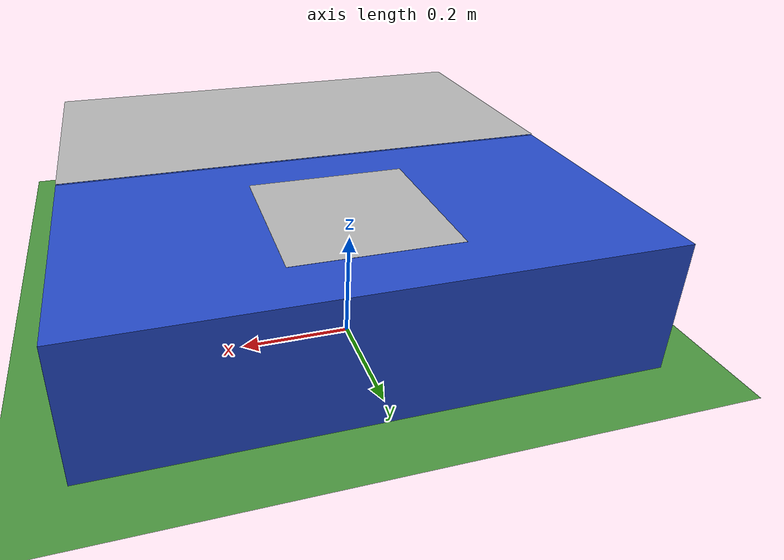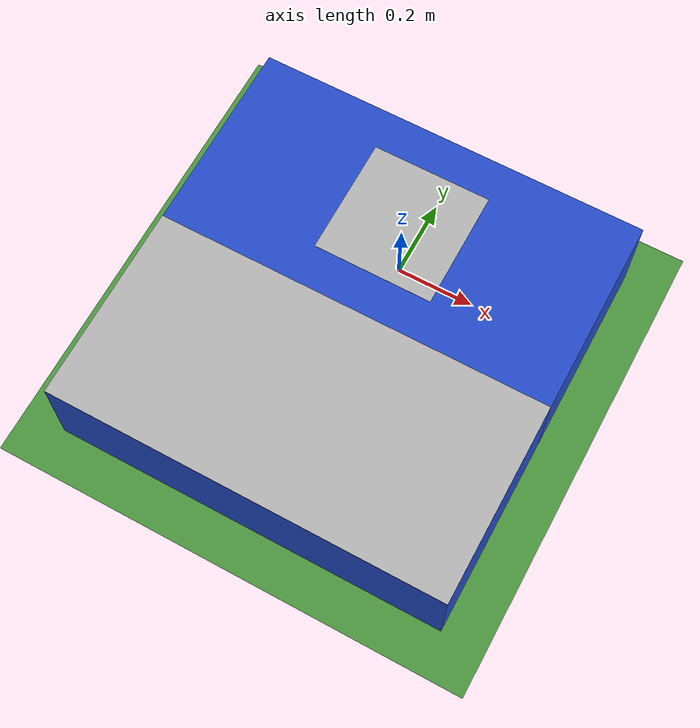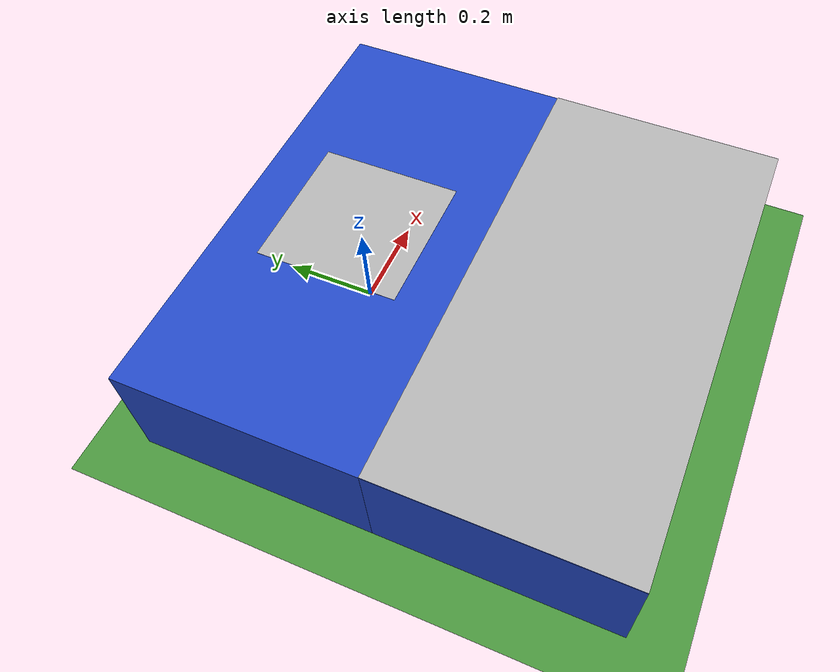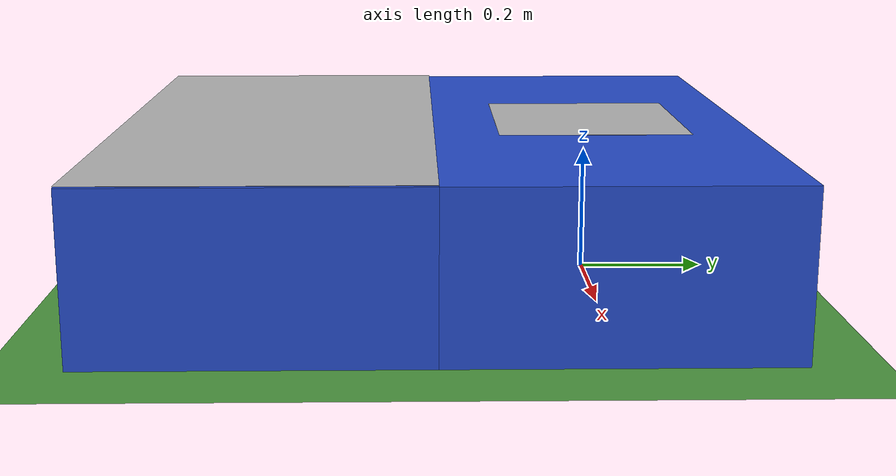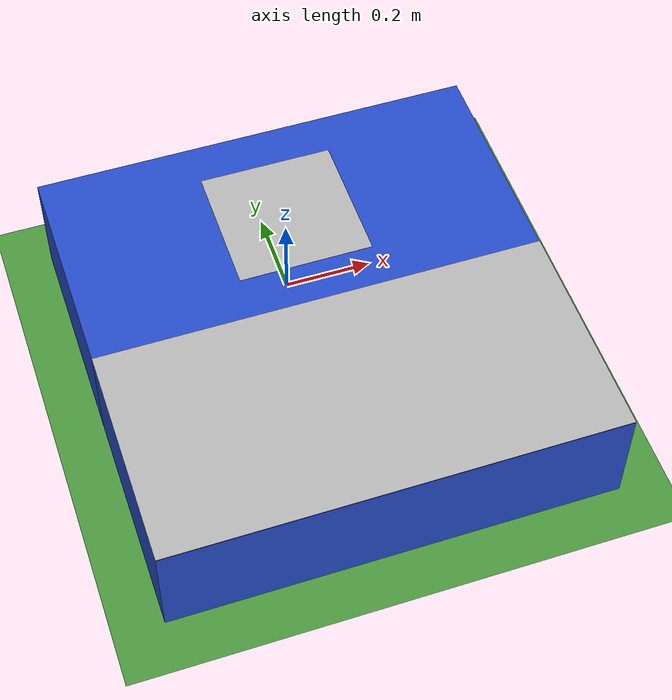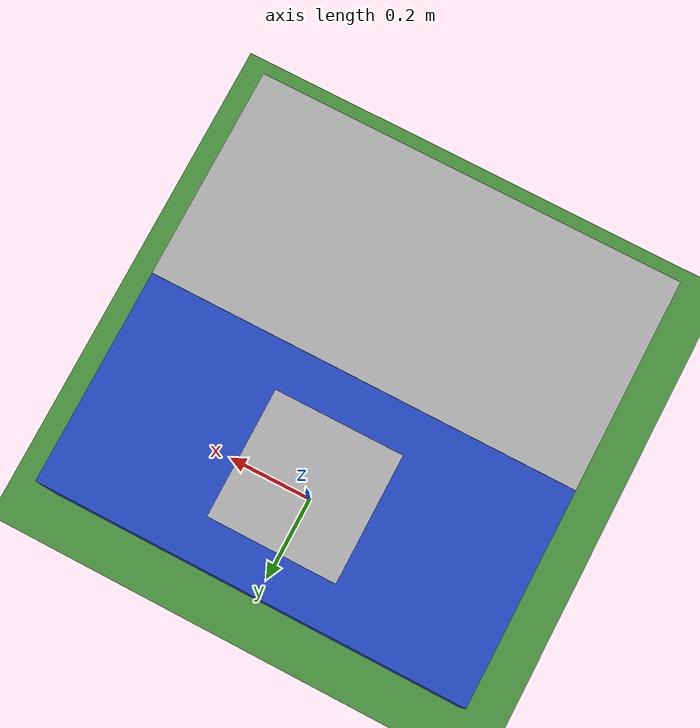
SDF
<?xml version="1.0" ?>
<sdf version="1.4">
  <world name="default">
    <include>
      <uri>model://sun</uri>
    </include>
    <include>
      <uri>model://marker_box</uri>
      <name>marker_box</name>
      <static>false</static>
      <pose>0 0 0 0 0 0</pose>
    </include>
    <include>
      <uri>model://logo_box</uri>
      <name>logo_box</name>
      <static>false</static>
      <pose>0 -0.5 0 0 0 0</pose>
    </include>
    <model name='ground_plane'>
      <static>true</static>
      <link name='link'>
        <collision name='collision'>
          <geometry>
            <plane>
              <normal>0 0 1</normal>
              <size>20 20</size>
            </plane>
          </geometry>
          <surface>
            <friction>
              <ode>
                <mu>100</mu>
                <mu2>50</mu2>
              </ode>
            </friction>
            <bounce/>
            <contact>
              <ode/>
            </contact>
          </surface>
          <max_contacts>10</max_contacts>
        </collision>
        <visual name='visual'>
          <cast_shadows>0</cast_shadows>
          <geometry>
            <plane>
              <normal>0 0 1</normal>
              <size>20 20</size>
            </plane>
          </geometry>
          <material>
            <script>
              <uri>file://media/materials/scripts/gazebo.material</uri>
              <name>Gazebo/Grass</name>
            </script>
          </material>
        </visual>
      </link>
    </model>
    <spherical_coordinates>
      <surface_model>EARTH_WGS84</surface_model>
      <latitude_deg>47.3667</latitude_deg>
      <longitude_deg>8.5500</longitude_deg>
      <elevation>500.0</elevation>
      <heading_deg>0</heading_deg>
    </spherical_coordinates>
    <physics type='ode'>
      <ode>
        <solver>
          <type>quick</type>
          <iters>1000</iters>
          <sor>1.3</sor>
        </solver>
        <constraints>
          <cfm>0</cfm>
          <erp>0.2</erp>
          <contact_max_correcting_vel>100</contact_max_correcting_vel>
          <contact_surface_layer>0.001</contact_surface_layer>
        </constraints>
      </ode>
      <max_step_size>0.005</max_step_size>
      <!-- real_time_factor = max_step_size * real_time_update_rate -->
      <real_time_factor>1</real_time_factor>
      <real_time_update_rate>200</real_time_update_rate>
      <gravity>0 0 -9.8</gravity>
    </physics>
  </world>
</sdf>

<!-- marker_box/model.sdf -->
<sdf version='1.6'>
  <model name='marker_box'>
    <static>false</static>
    <link name='box'>
      <pose>0 0 0.25 0 0 0</pose>
      <inertial>
        <mass>2</mass>
        <inertia>
          <ixx>0.052083</ixx>
          <ixy>0</ixy>
          <ixz>0</ixz>
          <iyy>0.177083</iyy>
          <iyz>0</iyz>
          <izz>0.208333</izz>
        </inertia>
      </inertial>
      <visual name='box'>
        <pose>0 0 -0.125 0 0 0</pose>
        <cast_shadows>true</cast_shadows>
        <geometry>
          <box>
            <size>1 0.5 0.25</size>
          </box>
        </geometry>
        <material>
          <script>
            <uri>file://media/materials/scripts/gazebo.material</uri>
            <name>Gazebo/Blue</name>
          </script>
        </material>
      </visual>
      <visual name='marker'>
        <pose>-0 0 0.002 0 0 0</pose>
        <cast_shadows>false</cast_shadows>
        <geometry>
          <plane>
            <normal>0 0 1</normal>
            <size>0.3 0.3</size>
          </plane>
        </geometry>
        <material>
          <script>
            <uri>model://marker_box/materials/scripts</uri>
            <uri>model://marker_box/materials/textures</uri>
            <name>ibvs/marker</name>
          </script>
        </material>
      </visual>
      <collision name='box'>
        <pose>0 0 -0.125 0 0 0</pose>
        <geometry>
          <box>
            <size>1 0.5 0.25</size>
          </box>
        </geometry>
        <surface>
          <friction>
            <ode>
              <mu>100</mu>
              <mu2>50</mu2>
            </ode>
          </friction>
        </surface>
      </collision>
    </link>
  </model>
</sdf>

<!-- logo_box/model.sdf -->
<sdf version='1.6'>
  <model name='logo_box'>
    <static>false</static>
    <link name='box'>
      <pose>0 0 0.125 0 0 0</pose>
      <inertial>
        <mass>2</mass>
        <inertia>
          <ixx>0.052083</ixx>
          <ixy>0</ixy>
          <ixz>0</ixz>
          <iyy>0.177083</iyy>
          <iyz>0</iyz>
          <izz>0.208333</izz>
        </inertia>
      </inertial>
      <visual name='box'>
        <pose>0 0 0 0 0 0</pose>
        <cast_shadows>true</cast_shadows>
        <geometry>
          <box>
            <size>1 0.5 0.25</size>
          </box>
        </geometry>
        <material>
          <script>
            <uri>file://media/materials/scripts/gazebo.material</uri>
            <name>Gazebo/Blue</name>
          </script>
        </material>
      </visual>
      <visual name='logo'>
        <pose>-0 0 0.127 0 0 0</pose>
        <cast_shadows>false</cast_shadows>
        <geometry>
          <plane>
            <normal>0 0 1</normal>
            <size>1 0.5</size>
          </plane>
        </geometry>
        <material>
          <script>
            <uri>model://logo_box/materials/scripts</uri>
            <uri>model://logo_box/materials/textures</uri>
            <name>ibvs/logo</name>
          </script>
        </material>
      </visual>
      <collision name='box'>
        <pose>0 0 0 0 0 0</pose>
        <geometry>
          <box>
            <size>1 0.5 0.25</size>
          </box>
        </geometry>
        <surface>
          <friction>
            <ode>
              <mu>100</mu>
              <mu2>50</mu2>
            </ode>
          </friction>
        </surface>
      </collision>
    </link>
  </model>
</sdf>
